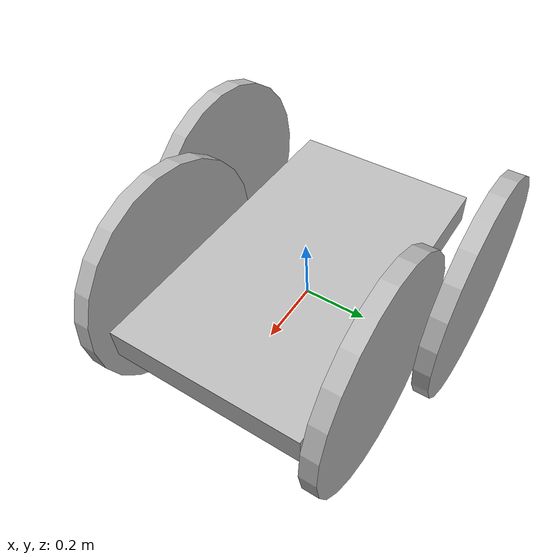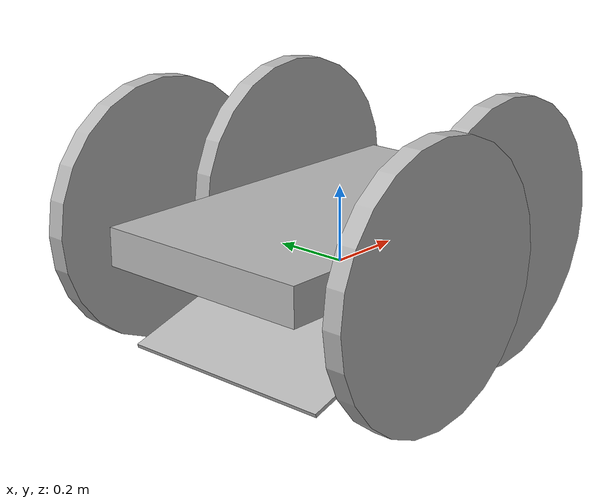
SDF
<sdf version="1.7">
    <model name='cc_robot'>
    <link name='chassis'>
        <pose>0 0 0.1 0 0 0</pose>
        <static>true</static>
        <inertial>
		<mass>10</mass>
	    </inertial>
        <collision name='collision'>
            <geometry>
                <box>
                    <size> 1.0 0.6 0.1 </size>
                </box>
            </geometry>
        </collision>
        <visual name='visual'>
            <geometry>
                <box>
                    <size> 1.0 0.6 0.1 </size>
                </box>
            </geometry>
        </visual>

        <!-- Caster wheel -->
        <collision name='caster_collision'>
            <pose>0.0 0 -0.15 0 -0.3 0 </pose>
            <geometry>
                <box>
                    <size> 0.9 0.6 0.01 </size>
                </box>
            </geometry>

            <surface>
                <friction>
                    <ode>
                        <mu>0</mu>
                        <mu2>0</mu2>
                        <slip1>1.0</slip1>
                        <slip2>1.0</slip2>
                    </ode>
                </friction>
            </surface>

        </collision>
        <visual name='caster_visual'>
            <pose>0.0 0 -0.15 0 -0.3 0 </pose>
            <geometry>
                <box>
                    <size> 0.9 0.6 0.01 </size>
                </box>
            </geometry>
        </visual>
        </link>

        <!-- Left Wheel -->
        <link name='left_wheel'>
            <pose>0.2 0.35 0.1 0 1.5707 1.5707</pose>
            <collision name='lw_collision'>
                <geometry>
                    <cylinder>
                        <radius>0.35</radius>
                        <length>0.05</length>
                    </cylinder>
                </geometry>
                <friction>
                    <ode>
                        <mu>1.0</mu>
                        <mu2>1.0</mu2>
                        <slip1>0.0</slip1>
                        <slip2>0.0</slip2>
                    </ode>
                </friction>
            </collision>
            <visual name='lw_visual'>
                <geometry>
                    <cylinder>
                        <radius>0.35</radius>
                        <length>0.05</length>
                    </cylinder>
                </geometry>
            </visual>
        </link>

        <!-- Left Back Wheel -->
        <link name='left_b_wheel'>
            <pose>-0.2 0.45 0.1 0 1.5707 1.5707</pose>
            <collision name='lw_collision'>
                <geometry>
                    <cylinder>
                        <radius>0.35</radius>
                        <length>0.05</length>
                    </cylinder>
                </geometry>
                <friction>
                    <ode>
                        <mu>1.0</mu>
                        <mu2>1.0</mu2>
                        <slip1>0.0</slip1>
                        <slip2>0.0</slip2>
                    </ode>
                </friction>
            </collision>
            <visual name='lw_visual'>
                <geometry>
                    <cylinder>
                        <radius>0.35</radius>
                        <length>0.05</length>
                    </cylinder>
                </geometry>
            </visual>
        </link>

        <!-- Right Wheel -->
        <link name='right_wheel'>
            <pose>0.2 -0.35 0.1 0 1.5707 1.5707</pose>
            <collision name='rw_collision'>
                <geometry>
                    <cylinder>
                        <radius>0.35</radius>
                        <length>0.05</length>
                    </cylinder>
                </geometry>
                <surface>
                <friction>
                    <ode>
                        <mu>1.0</mu>
                        <mu2>1.0</mu2>
                        <slip1>0.0</slip1>
                        <slip2>0.0</slip2>
                    </ode>
                </friction>
                </surface>
            </collision>
            <visual name='rw_visual'>
                <geometry>
                    <cylinder>
                        <radius>0.35</radius>
                        <length>0.05</length>
                    </cylinder>
                </geometry>
            </visual>
        </link>

        <!-- Right Back Wheel -->
        <link name='right_b_wheel'>
            <pose>-0.2 -0.45 0.1 0 1.5707 1.5707</pose>
            <collision name='rw_collision'>
                <geometry>
                    <cylinder>
                        <radius>0.35</radius>
                        <length>0.05</length>
                    </cylinder>
                </geometry>
                <surface>
                <friction>
                    <ode>
                        <mu>1.0</mu>
                        <mu2>1.0</mu2>
                        <slip1>0.0</slip1>
                        <slip2>0.0</slip2>
                    </ode>
                </friction>
                </surface>
            </collision>
            <visual name='rw_visual'>
                <geometry>
                    <cylinder>
                        <radius>0.35</radius>
                        <length>0.05</length>
                    </cylinder>
                </geometry>
            </visual>
        </link>

        <joint type='revolute' name='left_wheel_hinge'>
            <pose> 0 0 -0.03 0 0 0 </pose>
            <child>left_wheel</child>
            <parent>chassis</parent>
            <axis>
                <xyz>0 0 1</xyz>
            </axis>
            <dynamics>
		<friction>100.0</friction>
		<spring_stiffness>0.1</spring_stiffness>
	    </dynamics>
	    <limit>
		<effort>0.01</effort>
  		<velocity>0.005</velocity>
	    </limit>
        </joint>

        <joint type='revolute' name='right_wheel_hinge'>
            <pose> 0 0 0.03 0 0 0 </pose>
            <child>right_wheel</child>
            <parent>chassis</parent>
            <axis>
                <xyz>0 0 1</xyz>
            </axis>
            <dynamics>
		<friction>100.0</friction>
		<spring_stiffness>0.1</spring_stiffness>
	    </dynamics>
	    <limit>
		<effort>0.01</effort>
  		<velocity>0.005</velocity>
	    </limit>
        </joint>

        <joint type='revolute' name='left_b_wheel_hinge'>
            <pose> 0 0 0.03 0 0 0 </pose>
            <child>left_b_wheel</child>
            <parent>chassis</parent>
            <axis>
                <xyz>0 0 1</xyz>
            </axis>
            <dynamics>
		<friction>100.0</friction>
		<spring_stiffness>0.1</spring_stiffness>
	    </dynamics>
	    <limit>
		<effort>0.01</effort>
  		<velocity>0.005</velocity>
	    </limit>
        </joint>

        <joint type='revolute' name='right_b_wheel_hinge'>
            <pose> 0 0 0.03 0 0 0 </pose>
            <child>right_b_wheel</child>
            <parent>chassis</parent>
            <axis>
                <xyz>0 0 1</xyz>
            </axis>
            <dynamics>
		<friction>100.0</friction>
		<spring_stiffness>0.1</spring_stiffness>
	    </dynamics>
	    <limit>
		<effort>0.01</effort>
  		<velocity>0.005</velocity>
	    </limit>
        </joint>

    </model>
</sdf>
